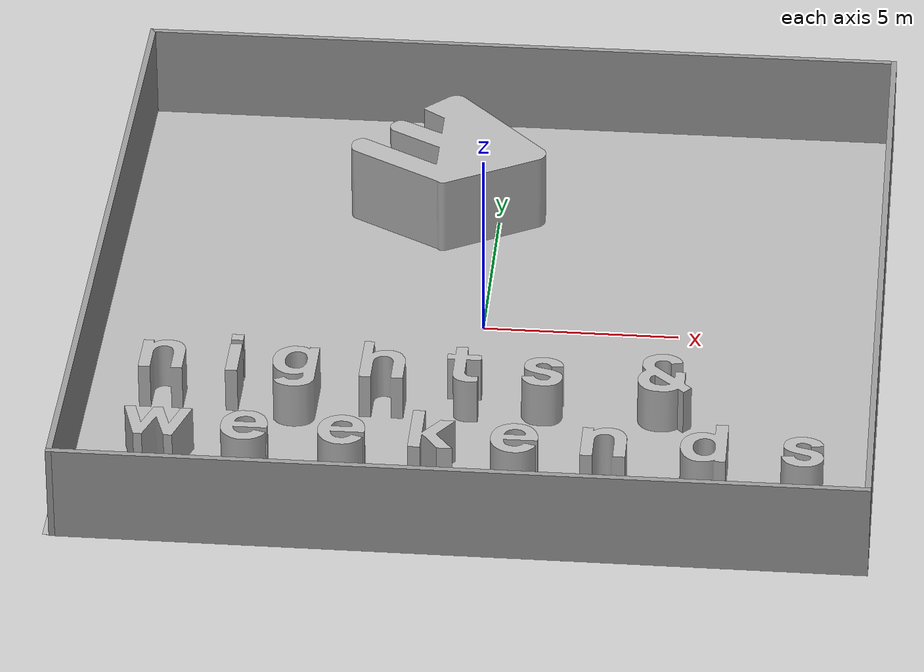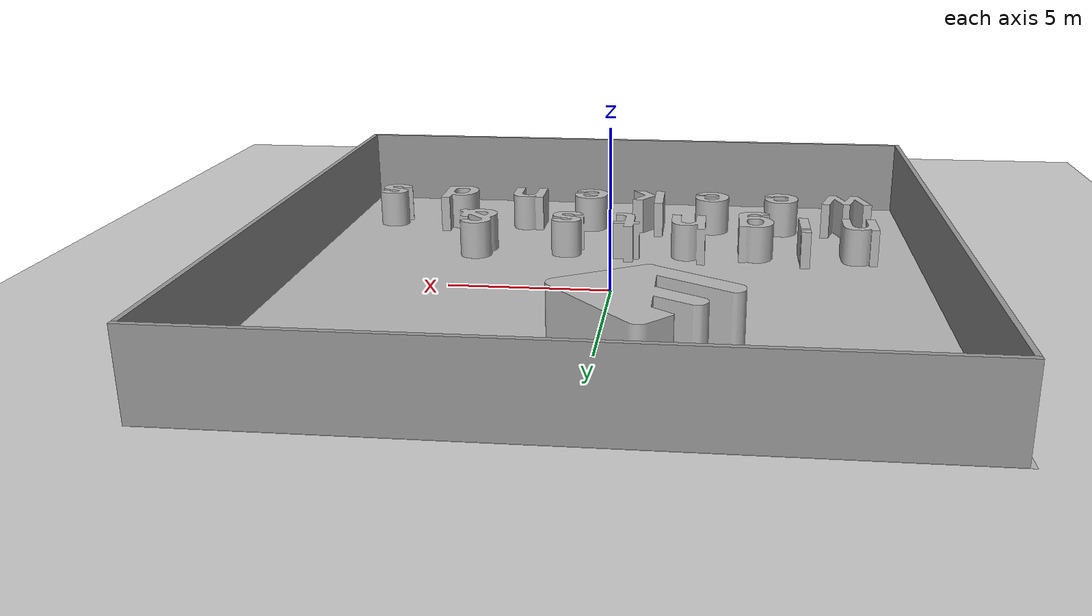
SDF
<sdf version="1.7">
 <world name="default">
  <light name="sun" type="directional">
   <pose>0 0 10 0 -0 0</pose>
   <diffuse>0.8 0.8 0.8 1</diffuse>
   <specular>0.2 0.2 0.2 1</specular>
   <attenuation>
    <range>1000</range>
    <constant>0.9</constant>
    <linear>0.01</linear>
    <quadratic>0.001</quadratic>
   </attenuation>
   <direction>-0.5 0.1 -0.9</direction>
   <spot><inner_angle>0</inner_angle><outer_angle>0</outer_angle><falloff>0</falloff></spot>
  </light>
  <model name="ground_plane">
   <static>1</static>
   <link name="link">
    <collision name="collision">
     <geometry><plane><normal>0 0 1</normal><size>100 100</size></plane></geometry>
     <surface>
      <contact><collide_bitmask>65535</collide_bitmask></contact>
      <friction><ode><mu>100</mu><mu2>50</mu2></ode></friction>
     </surface>
    </collision>
    <visual name="visual">
     <cast_shadows>0</cast_shadows>
     <geometry><plane><normal>0 0 1</normal><size>100 100</size></plane></geometry>
     <material>
      <script><uri>file://media/materials/scripts/gazebo.material</uri><name>Gazebo/Grey</name></script>
     </material>
    </visual>
   </link>
  </model>
  <gravity>0 0 -9.8</gravity>
  <magnetic_field>6e-06 2.3e-05 -4.2e-05</magnetic_field>
  <atmosphere type="adiabatic"/>
  <physics type="ode">
   <max_step_size>0.001</max_step_size>
   <real_time_factor>1</real_time_factor>
   <real_time_update_rate>1000</real_time_update_rate>
  </physics>
  <scene><ambient>0.4 0.4 0.4 1</ambient><background>0.7 0.7 0.7 1</background><shadows>1</shadows></scene>
  <spherical_coordinates>
   <surface_model>EARTH_WGS84</surface_model>
   <latitude_deg>0</latitude_deg>
   <longitude_deg>0</longitude_deg>
   <elevation>0</elevation>
   <heading_deg>0</heading_deg>
  </spherical_coordinates>
  <model name="Floor_room">
   <link name="main">
    <pose>0 0 0.01 0 -0 0</pose>
    <collision name="main_Collision"><geometry><box><size>20 20 0.001</size></box></geometry></collision>
    <visual name="main_Visual">
     <geometry><box><size>20 20 0.001</size></box></geometry>
     <material>
      <script>
       <uri>model://Floor_room/materials/scripts</uri>
       <uri>model://Floor_room/materials/textures</uri>
       <name>floor_room</name>
      </script>
     </material>
    </visual>
   </link>
   <static>1</static>
   <pose>0.021938 0.000973 0 0 -0 0</pose>
  </model>
  <model name="enclosure">
   <pose>0.183238 -0.02177 0 0 -0 0</pose>
   <link name="Wall_0">
    <collision name="Wall_0_Collision">
     <geometry><box><size>20 0.15 2.5</size></box></geometry>
     <pose>0 0 1.25 0 -0 0</pose>
    </collision>
    <visual name="Wall_0_Visual">
     <pose>0 0 1.25 0 -0 0</pose>
     <geometry><box><size>20 0.15 2.5</size></box></geometry>
     <material>
      <script><uri>file://media/materials/scripts/gazebo.material</uri><name>Gazebo/Grey</name></script>
      <ambient>1 1 1 1</ambient>
     </material>
     <meta><layer>0</layer></meta>
    </visual>
    <pose>0 9.925 0 0 -0 0</pose>
   </link>
   <link name="Wall_4">
    <collision name="Wall_4_Collision">
     <geometry><box><size>20 0.15 2.5</size></box></geometry>
     <pose>0 0 1.25 0 -0 0</pose>
    </collision>
    <visual name="Wall_4_Visual">
     <pose>0 0 1.25 0 -0 0</pose>
     <geometry><box><size>20 0.15 2.5</size></box></geometry>
     <material>
      <script><uri>file://media/materials/scripts/gazebo.material</uri><name>Gazebo/Grey</name></script>
      <ambient>1 1 1 1</ambient>
     </material>
     <meta><layer>0</layer></meta>
    </visual>
    <pose>9.925 -0 0 0 -0 -1.5708</pose>
   </link>
   <link name="Wall_6">
    <collision name="Wall_6_Collision">
     <geometry><box><size>20 0.15 2.5</size></box></geometry>
     <pose>0 0 1.25 0 -0 0</pose>
    </collision>
    <visual name="Wall_6_Visual">
     <pose>0 0 1.25 0 -0 0</pose>
     <geometry><box><size>20 0.15 2.5</size></box></geometry>
     <material>
      <script><uri>file://media/materials/scripts/gazebo.material</uri><name>Gazebo/Grey</name></script>
      <ambient>1 1 1 1</ambient>
     </material>
     <meta><layer>0</layer></meta>
    </visual>
    <pose>0 -9.925 0 0 -0 3.14159</pose>
   </link>
   <link name="Wall_8">
    <collision name="Wall_8_Collision">
     <geometry><box><size>20 0.15 2.5</size></box></geometry>
     <pose>0 0 1.25 0 -0 0</pose>
    </collision>
    <visual name="Wall_8_Visual">
     <pose>0 0 1.25 0 -0 0</pose>
     <geometry><box><size>20 0.15 2.5</size></box></geometry>
     <material>
      <script><uri>file://media/materials/scripts/gazebo.material</uri><name>Gazebo/Grey</name></script>
      <ambient>1 1 1 1</ambient>
     </material>
     <meta><layer>0</layer></meta>
    </visual>
    <pose>-9.925 -0 0 0 -0 1.5708</pose>
   </link>
   <static>1</static>
  </model>
  <model name="nights_and_weekends_s5">
   <static>1</static>
   <link name="link">
    <collision name="collision">
     <geometry>
      <mesh><scale>1 1 1</scale><uri>model://nights_and_weekends_s5/meshes/nights_and_weekends_s5.stl</uri></mesh>
      <surface><friction><ode><mu>1.2</mu><mu2>1.2</mu2></ode></friction></surface>
     </geometry>
    </collision>
    <visual name="visual">
     <geometry>
      <mesh><scale>1 1 1</scale><uri>model://nights_and_weekends_s5/meshes/nights_and_weekends_s5.dae</uri></mesh>
     </geometry>
    </visual>
   </link>
   <pose>-1.23344 -0.490069 0 0 -0 0</pose>
  </model>
 </world>
</sdf>
